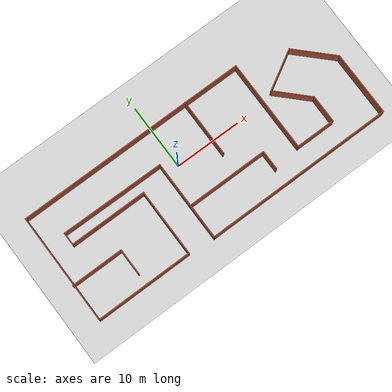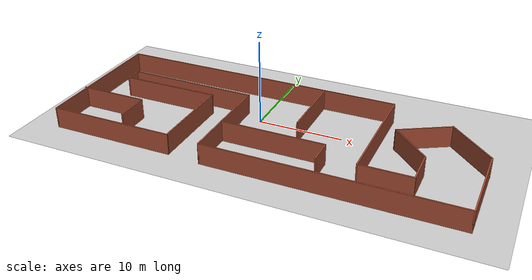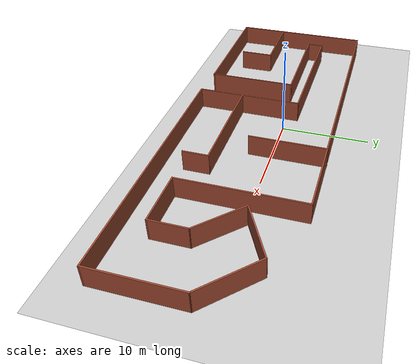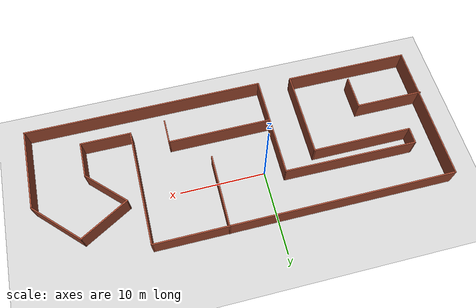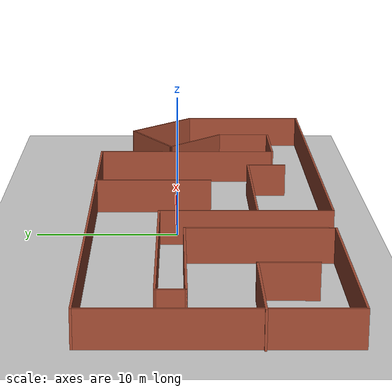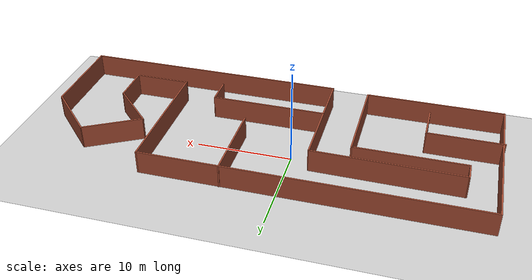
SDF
<sdf version="1.6">
 <world name="default">
  <light name="sun" type="directional">
   <pose>0 0 10 0 -0 0</pose>
   <diffuse>0.8 0.8 0.8 1</diffuse>
   <specular>0.2 0.2 0.2 1</specular>
   <attenuation>
    <range>1000</range>
    <constant>0.9</constant>
    <linear>0.01</linear>
    <quadratic>0.001</quadratic>
   </attenuation>
   <direction>-0.5 0.1 -0.9</direction>
  </light>
  <model name="ground_plane">
   <static>1</static>
   <link name="link">
    <collision name="collision">
     <geometry><plane><normal>0 0 1</normal><size>100 100</size></plane></geometry>
     <surface>
      <contact><collide_bitmask>65535</collide_bitmask></contact>
      <friction><ode><mu>100</mu><mu2>50</mu2></ode></friction>
     </surface>
    </collision>
    <visual name="visual">
     <cast_shadows>0</cast_shadows>
     <geometry><plane><normal>0 0 1</normal><size>100 100</size></plane></geometry>
     <material>
      <script><uri>file://media/materials/scripts/gazebo.material</uri><name>Gazebo/Grey</name></script>
     </material>
    </visual>
   </link>
  </model>
  <gravity>0 0 -9.8</gravity>
  <magnetic_field>6e-06 2.3e-05 -4.2e-05</magnetic_field>
  <atmosphere type="adiabatic"/>
  <physics name="default_physics" default="0" type="ode">
   <max_step_size>0.001</max_step_size>
   <real_time_factor>1</real_time_factor>
   <real_time_update_rate>1000</real_time_update_rate>
  </physics>
  <scene><ambient>0.4 0.4 0.4 1</ambient><background>0.7 0.7 0.7 1</background><shadows>1</shadows></scene>
  <audio><device>default</device></audio>
  <spherical_coordinates>
   <surface_model>EARTH_WGS84</surface_model>
   <latitude_deg>0</latitude_deg>
   <longitude_deg>0</longitude_deg>
   <elevation>0</elevation>
   <heading_deg>0</heading_deg>
  </spherical_coordinates>
  <model name="closehome">
   <pose>2.74125 -2.3632 0 0 -0 0</pose>
   <link name="Wall_1">
    <collision name="Wall_1_Collision">
     <geometry><box><size>12.25 0.15 2.5</size></box></geometry>
     <pose>0 0 1.25 0 -0 0</pose>
    </collision>
    <visual name="Wall_1_Visual">
     <pose>0 0 1.25 0 -0 0</pose>
     <geometry><box><size>12.25 0.15 2.5</size></box></geometry>
     <material>
      <script><uri>file://media/materials/scripts/gazebo.material</uri><name>Gazebo/Bricks</name></script>
      <ambient>1 1 1 1</ambient>
     </material>
     <meta><layer>0</layer></meta>
    </visual>
    <pose>-4.82997 -2.41293 0 0 -0 -1.5708</pose>
   </link>
   <link name="Wall_10">
    <collision name="Wall_10_Collision">
     <geometry><box><size>35 0.15 2.5</size></box></geometry>
     <pose>0 0 1.25 0 -0 0</pose>
    </collision>
    <visual name="Wall_10_Visual">
     <pose>0 0 1.25 0 -0 0</pose>
     <geometry><box><size>35 0.15 2.5</size></box></geometry>
     <material>
      <script><uri>file://media/materials/scripts/gazebo.material</uri><name>Gazebo/Bricks</name></script>
      <ambient>1 1 1 1</ambient>
     </material>
     <meta><layer>0</layer></meta>
    </visual>
    <pose>-5.96134 8.41918 0 0 -0 3.14159</pose>
   </link>
   <link name="Wall_11">
    <collision name="Wall_11_Collision">
     <geometry><box><size>16.75 0.15 2.5</size></box></geometry>
     <pose>0 0 1.25 0 -0 0</pose>
    </collision>
    <visual name="Wall_11_Visual">
     <pose>0 0 1.25 0 -0 0</pose>
     <geometry><box><size>16.75 0.15 2.5</size></box></geometry>
     <material>
      <script><uri>file://media/materials/scripts/gazebo.material</uri><name>Gazebo/Bricks</name></script>
      <ambient>1 1 1 1</ambient>
     </material>
     <meta><layer>0</layer></meta>
    </visual>
    <pose>-23.3863 0.119179 0 0 -0 -1.5708</pose>
   </link>
   <link name="Wall_12">
    <collision name="Wall_12_Collision">
     <geometry><box><size>14.75 0.15 2.5</size></box></geometry>
     <pose>0 0 1.25 0 -0 0</pose>
    </collision>
    <visual name="Wall_12_Visual">
     <pose>0 0 1.25 0 -0 0</pose>
     <geometry><box><size>14.75 0.15 2.5</size></box></geometry>
     <material>
      <script><uri>file://media/materials/scripts/gazebo.material</uri><name>Gazebo/Bricks</name></script>
      <ambient>1 1 1 1</ambient>
     </material>
     <meta><layer>0</layer></meta>
    </visual>
    <pose>-16.0863 -8.18082 0 0 -0 0</pose>
   </link>
   <link name="Wall_13">
    <collision name="Wall_13_Collision">
     <geometry><box><size>10.25 0.15 2.5</size></box></geometry>
     <pose>0 0 1.25 0 -0 0</pose>
    </collision>
    <visual name="Wall_13_Visual">
     <pose>0 0 1.25 0 -0 0</pose>
     <geometry><box><size>10.25 0.15 2.5</size></box></geometry>
     <material>
      <script><uri>file://media/materials/scripts/gazebo.material</uri><name>Gazebo/Bricks</name></script>
      <ambient>1 1 1 1</ambient>
     </material>
     <meta><layer>0</layer></meta>
    </visual>
    <pose>-8.78634 -3.13082 0 0 -0 1.5708</pose>
   </link>
   <link name="Wall_14">
    <collision name="Wall_14_Collision">
     <geometry><box><size>11.75 0.15 2.5</size></box></geometry>
     <pose>0 0 1.25 0 -0 0</pose>
    </collision>
    <visual name="Wall_14_Visual">
     <pose>0 0 1.25 0 -0 0</pose>
     <geometry><box><size>11.75 0.15 2.5</size></box></geometry>
     <material>
      <script><uri>file://media/materials/scripts/gazebo.material</uri><name>Gazebo/Bricks</name></script>
      <ambient>1 1 1 1</ambient>
     </material>
     <meta><layer>0</layer></meta>
    </visual>
    <pose>-14.5863 1.91918 0 0 -0 3.14159</pose>
   </link>
   <link name="Wall_15">
    <collision name="Wall_15_Collision">
     <geometry><box><size>2 0.15 2.5</size></box></geometry>
     <pose>0 0 1.25 0 -0 0</pose>
    </collision>
    <visual name="Wall_15_Visual">
     <pose>0 0 1.25 0 -0 0</pose>
     <geometry><box><size>2 0.15 2.5</size></box></geometry>
     <material>
      <script><uri>file://media/materials/scripts/gazebo.material</uri><name>Gazebo/Bricks</name></script>
      <ambient>1 1 1 1</ambient>
     </material>
     <meta><layer>0</layer></meta>
    </visual>
    <pose>-20.3863 2.84418 0 0 -0 1.5708</pose>
   </link>
   <link name="Wall_16">
    <collision name="Wall_16_Collision">
     <geometry><box><size>15.7069 0.15 2.5</size></box></geometry>
     <pose>0 0 1.25 0 -0 0</pose>
    </collision>
    <visual name="Wall_16_Visual">
     <pose>0 0 1.25 0 -0 0</pose>
     <geometry><box><size>15.7069 0.15 2.5</size></box></geometry>
     <material>
      <script><uri>file://media/materials/scripts/gazebo.material</uri><name>Gazebo/Bricks</name></script>
      <ambient>1 1 1 1</ambient>
     </material>
     <meta><layer>0</layer></meta>
    </visual>
    <pose>-12.6082 3.70313 0 0 -0 -0.008492</pose>
   </link>
   <link name="Wall_18">
    <collision name="Wall_18_Collision">
     <geometry><box><size>8.75 0.15 2.5</size></box></geometry>
     <pose>0 0 1.25 0 -0 0</pose>
    </collision>
    <visual name="Wall_18_Visual">
     <pose>0 0 1.25 0 -0 0</pose>
     <geometry><box><size>8.75 0.15 2.5</size></box></geometry>
     <material>
      <script><uri>file://media/materials/scripts/gazebo.material</uri><name>Gazebo/Bricks</name></script>
      <ambient>1 1 1 1</ambient>
     </material>
     <meta><layer>0</layer></meta>
    </visual>
    <pose>2.91204 4.16293 0 0 -0 -1.5708</pose>
   </link>
   <link name="Wall_2">
    <collision name="Wall_2_Collision">
     <geometry><box><size>28.5 0.15 2.5</size></box></geometry>
     <pose>0 0 1.25 0 -0 0</pose>
    </collision>
    <visual name="Wall_2_Visual">
     <pose>0 0 1.25 0 -0 0</pose>
     <geometry><box><size>28.5 0.15 2.5</size></box></geometry>
     <material>
      <script><uri>file://media/materials/scripts/gazebo.material</uri><name>Gazebo/Bricks</name></script>
      <ambient>1 1 1 1</ambient>
     </material>
     <meta><layer>0</layer></meta>
    </visual>
    <pose>9.34503 -8.46293 0 0 -0 0</pose>
   </link>
   <link name="Wall_20">
    <collision name="Wall_20_Collision">
     <geometry><box><size>12.25 0.15 2.5</size></box></geometry>
     <pose>0 0 1.25 0 -0 0</pose>
    </collision>
    <visual name="Wall_20_Visual">
     <pose>0 0 1.25 0 -0 0</pose>
     <geometry><box><size>12.25 0.15 2.5</size></box></geometry>
     <material>
      <script><uri>file://media/materials/scripts/gazebo.material</uri><name>Gazebo/Bricks</name></script>
      <ambient>1 1 1 1</ambient>
     </material>
     <meta><layer>0</layer></meta>
    </visual>
    <pose>1.24952 -3.21199 0 0 -0 0</pose>
   </link>
   <link name="Wall_22">
    <collision name="Wall_22_Collision">
     <geometry><box><size>3 0.15 2.5</size></box></geometry>
     <pose>0 0 1.25 0 -0 0</pose>
    </collision>
    <visual name="Wall_22_Visual">
     <pose>0 0 1.25 0 -0 0</pose>
     <geometry><box><size>3 0.15 2.5</size></box></geometry>
     <material>
      <script><uri>file://media/materials/scripts/gazebo.material</uri><name>Gazebo/Bricks</name></script>
      <ambient>1 1 1 1</ambient>
     </material>
     <meta><layer>0</layer></meta>
    </visual>
    <pose>7.29953 -4.63699 0 0 -0 -1.5708</pose>
   </link>
   <link name="Wall_24">
    <collision name="Wall_24_Collision">
     <geometry><box><size>8 0.15 2.5</size></box></geometry>
     <pose>0 0 1.25 0 -0 0</pose>
    </collision>
    <visual name="Wall_24_Visual">
     <pose>0 0 1.25 0 -0 0</pose>
     <geometry><box><size>8 0.15 2.5</size></box></geometry>
     <material>
      <script><uri>file://media/materials/scripts/gazebo.material</uri><name>Gazebo/Bricks</name></script>
      <ambient>1 1 1 1</ambient>
     </material>
     <meta><layer>0</layer></meta>
    </visual>
    <pose>-19.6261 -2.50441 0 0 -0 0</pose>
   </link>
   <link name="Wall_25">
    <collision name="Wall_25_Collision">
     <geometry><box><size>4 0.15 2.5</size></box></geometry>
     <pose>0 0 1.25 0 -0 0</pose>
    </collision>
    <visual name="Wall_25_Visual">
     <pose>0 0 1.25 0 -0 0</pose>
     <geometry><box><size>4 0.15 2.5</size></box></geometry>
     <material>
      <script><uri>file://media/materials/scripts/gazebo.material</uri><name>Gazebo/Bricks</name></script>
      <ambient>1 1 1 1</ambient>
     </material>
     <meta><layer>0</layer></meta>
    </visual>
    <pose>-15.7011 -4.42941 0 0 -0 -1.5708</pose>
   </link>
   <link name="Wall_3">
    <collision name="Wall_3_Collision">
     <geometry><box><size>9.75 0.15 2.5</size></box></geometry>
     <pose>0 0 1.25 0 -0 0</pose>
    </collision>
    <visual name="Wall_3_Visual">
     <pose>0 0 1.25 0 -0 0</pose>
     <geometry><box><size>9.75 0.15 2.5</size></box></geometry>
     <material>
      <script><uri>file://media/materials/scripts/gazebo.material</uri><name>Gazebo/Bricks</name></script>
      <ambient>1 1 1 1</ambient>
     </material>
     <meta><layer>0</layer></meta>
    </visual>
    <pose>23.52 -3.66293 0 0 -0 1.5708</pose>
   </link>
   <link name="Wall_4">
    <collision name="Wall_4_Collision">
     <geometry><box><size>7 0.15 2.5</size></box></geometry>
     <pose>0 0 1.25 0 -0 0</pose>
    </collision>
    <visual name="Wall_4_Visual">
     <pose>0 0 1.25 0 -0 0</pose>
     <geometry><box><size>7 0.15 2.5</size></box></geometry>
     <material>
      <script><uri>file://media/materials/scripts/gazebo.material</uri><name>Gazebo/Bricks</name></script>
      <ambient>1 1 1 1</ambient>
     </material>
     <meta><layer>0</layer></meta>
    </visual>
    <pose>21.0982 3.55891 0 0 -0 2.35619</pose>
   </link>
   <link name="Wall_5">
    <collision name="Wall_5_Collision">
     <geometry><box><size>6.5 0.15 2.5</size></box></geometry>
     <pose>0 0 1.25 0 -0 0</pose>
    </collision>
    <visual name="Wall_5_Visual">
     <pose>0 0 1.25 0 -0 0</pose>
     <geometry><box><size>6.5 0.15 2.5</size></box></geometry>
     <material>
      <script><uri>file://media/materials/scripts/gazebo.material</uri><name>Gazebo/Bricks</name></script>
      <ambient>1 1 1 1</ambient>
     </material>
     <meta><layer>0</layer></meta>
    </visual>
    <pose>15.9267 4.39325 0 0 -0 -2.61799</pose>
   </link>
   <link name="Wall_6">
    <collision name="Wall_6_Collision">
     <geometry><box><size>6 0.15 2.5</size></box></geometry>
     <pose>0 0 1.25 0 -0 0</pose>
    </collision>
    <visual name="Wall_6_Visual">
     <pose>0 0 1.25 0 -0 0</pose>
     <geometry><box><size>6 0.15 2.5</size></box></geometry>
     <material>
      <script><uri>file://media/materials/scripts/gazebo.material</uri><name>Gazebo/Bricks</name></script>
      <ambient>1 1 1 1</ambient>
     </material>
     <meta><layer>0</layer></meta>
    </visual>
    <pose>15.2454 0.737466 0 0 -0 -0.785398</pose>
   </link>
   <link name="Wall_7">
    <collision name="Wall_7_Collision">
     <geometry><box><size>4.25 0.15 2.5</size></box></geometry>
     <pose>0 0 1.25 0 -0 0</pose>
    </collision>
    <visual name="Wall_7_Visual">
     <pose>0 0 1.25 0 -0 0</pose>
     <geometry><box><size>4.25 0.15 2.5</size></box></geometry>
     <material>
      <script><uri>file://media/materials/scripts/gazebo.material</uri><name>Gazebo/Bricks</name></script>
      <ambient>1 1 1 1</ambient>
     </material>
     <meta><layer>0</layer></meta>
    </visual>
    <pose>17.3137 -3.38082 0 0 -0 -1.5708</pose>
   </link>
   <link name="Wall_8">
    <collision name="Wall_8_Collision">
     <geometry><box><size>6 0.15 2.5</size></box></geometry>
     <pose>0 0 1.25 0 -0 0</pose>
    </collision>
    <visual name="Wall_8_Visual">
     <pose>0 0 1.25 0 -0 0</pose>
     <geometry><box><size>6 0.15 2.5</size></box></geometry>
     <material>
      <script><uri>file://media/materials/scripts/gazebo.material</uri><name>Gazebo/Bricks</name></script>
      <ambient>1 1 1 1</ambient>
     </material>
     <meta><layer>0</layer></meta>
    </visual>
    <pose>14.3887 -5.43082 0 0 -0 3.14159</pose>
   </link>
   <link name="Wall_9">
    <collision name="Wall_9_Collision">
     <geometry><box><size>14 0.15 2.5</size></box></geometry>
     <pose>0 0 1.25 0 -0 0</pose>
    </collision>
    <visual name="Wall_9_Visual">
     <pose>0 0 1.25 0 -0 0</pose>
     <geometry><box><size>14 0.15 2.5</size></box></geometry>
     <material>
      <script><uri>file://media/materials/scripts/gazebo.material</uri><name>Gazebo/Bricks</name></script>
      <ambient>1 1 1 1</ambient>
     </material>
     <meta><layer>0</layer></meta>
    </visual>
    <pose>11.4637 1.49418 0 0 -0 1.5708</pose>
   </link>
   <static>1</static>
  </model>
 </world>
</sdf>
